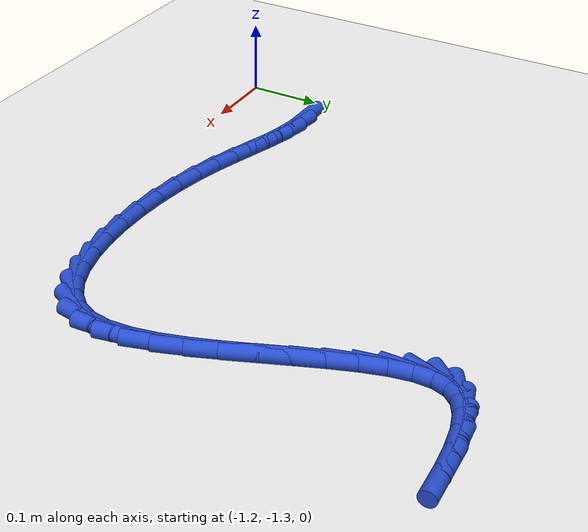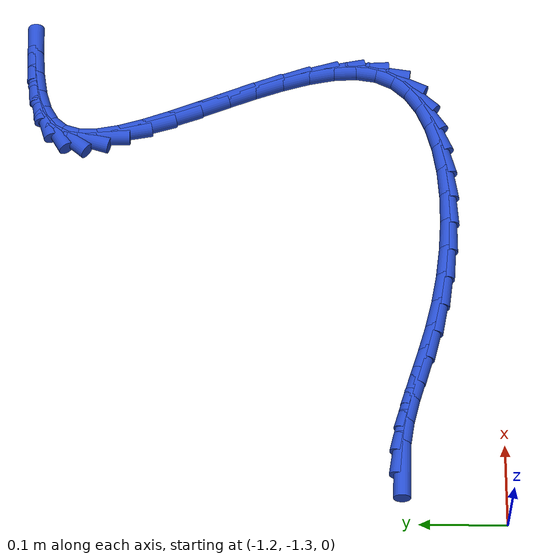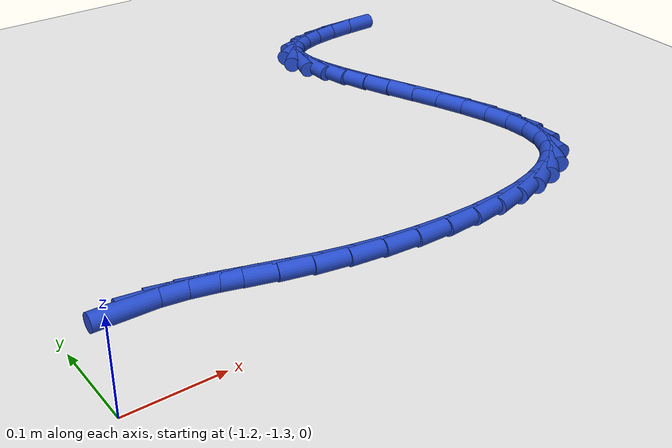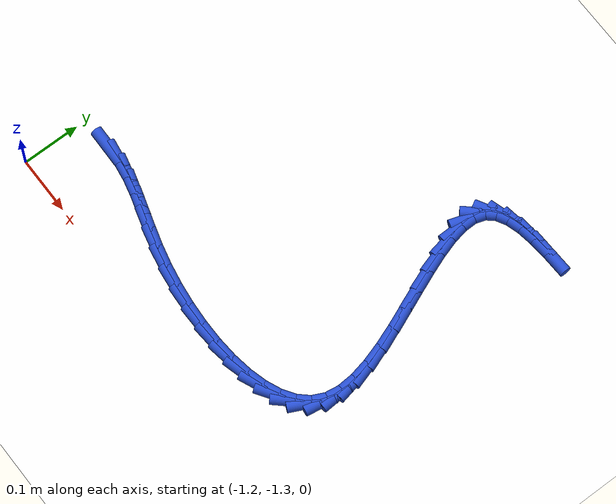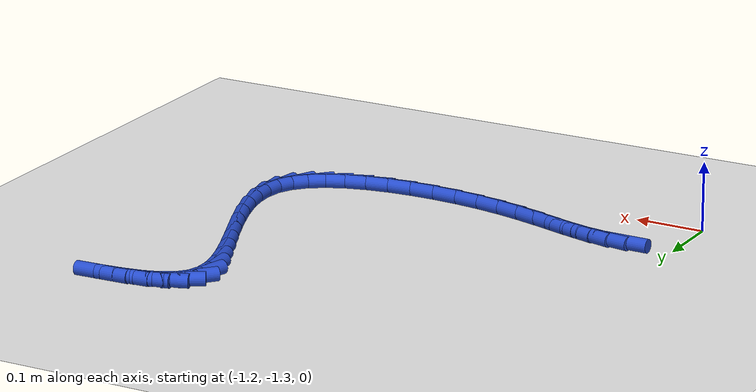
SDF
<sdf version="1.6">
 <world name="default">
  <model name="ground_plane">
   <static>1</static>
   <link name="link">
    <collision name="collision">
     <geometry><plane><normal>0 0 1</normal><size>100 100</size></plane></geometry>
     <surface><friction><ode><mu>100</mu><mu2>50</mu2></ode></friction></surface>
    </collision>
    <visual name="visual">
     <cast_shadows>0</cast_shadows>
     <geometry><plane><normal>0 0 1</normal><size>100 100</size></plane></geometry>
     <material>
      <script><uri>file://media/materials/scripts/gazebo.material</uri><name>Gazebo/WhiteGlow</name></script>
     </material>
    </visual>
   </link>
  </model>
  <model name="line">
   <link name="link_220">
    <pose>-1.132190685036178 -1.1822906270000768 0.01 0 1.57 -0.018537562318021623</pose>
    <collision name="collision">
     <geometry><cylinder><radius>0.01</radius><length>0.08</length></cylinder></geometry>
    </collision>
    <visual name="visual">
     <material>
      <script><name>Gazebo/Blue</name><uri>file://media/materials/scripts/gazebo.material</uri></script>
     </material>
     <geometry><cylinder><radius>0.01</radius><length>0.08</length></cylinder></geometry>
    </visual>
   </link>
   <link name="link_221">
    <pose>-1.1045751668721282 -1.1828026100364888 0.01 0 1.57 -0.14752570635238532</pose>
    <collision name="collision">
     <geometry><cylinder><radius>0.01</radius><length>0.08</length></cylinder></geometry>
    </collision>
    <visual name="visual">
     <material>
      <script><name>Gazebo/Blue</name><uri>file://media/materials/scripts/gazebo.material</uri></script>
     </material>
     <geometry><cylinder><radius>0.01</radius><length>0.08</length></cylinder></geometry>
    </visual>
   </link>
   <link name="link_222">
    <pose>-1.0767879447396382 -1.1869319398471527 0.01 0 1.57 -0.2357447293037168</pose>
    <collision name="collision">
     <geometry><cylinder><radius>0.01</radius><length>0.08</length></cylinder></geometry>
    </collision>
    <visual name="visual">
     <material>
      <script><name>Gazebo/Blue</name><uri>file://media/materials/scripts/gazebo.material</uri></script>
     </material>
     <geometry><cylinder><radius>0.01</radius><length>0.08</length></cylinder></geometry>
    </visual>
   </link>
   <link name="link_223">
    <pose>-1.0484693596692336 -1.1937343829681752 0.01 0 1.57 -0.28416808545041117</pose>
    <collision name="collision">
     <geometry><cylinder><radius>0.01</radius><length>0.08</length></cylinder></geometry>
    </collision>
    <visual name="visual">
     <material>
      <script><name>Gazebo/Blue</name><uri>file://media/materials/scripts/gazebo.material</uri></script>
     </material>
     <geometry><cylinder><radius>0.01</radius><length>0.08</length></cylinder></geometry>
    </visual>
   </link>
   <link name="link_224">
    <pose>-1.0192597526914402 -1.2022657059356647 0.01 0 1.57 -0.2968057909113308</pose>
    <collision name="collision">
     <geometry><cylinder><radius>0.01</radius><length>0.08</length></cylinder></geometry>
    </collision>
    <visual name="visual">
     <material>
      <script><name>Gazebo/Blue</name><uri>file://media/materials/scripts/gazebo.material</uri></script>
     </material>
     <geometry><cylinder><radius>0.01</radius><length>0.08</length></cylinder></geometry>
    </visual>
   </link>
   <link name="link_225">
    <pose>-0.9887994648367817 -1.211581675285726 0.01 0 1.57 -0.2781078214969602</pose>
    <collision name="collision">
     <geometry><cylinder><radius>0.01</radius><length>0.08</length></cylinder></geometry>
    </collision>
    <visual name="visual">
     <material>
      <script><name>Gazebo/Blue</name><uri>file://media/materials/scripts/gazebo.material</uri></script>
     </material>
     <geometry><cylinder><radius>0.01</radius><length>0.08</length></cylinder></geometry>
    </visual>
   </link>
   <link name="link_226">
    <pose>-0.9567288371357837 -1.220738057554467 0.01 0 1.57 -0.23247385164590176</pose>
    <collision name="collision">
     <geometry><cylinder><radius>0.01</radius><length>0.08</length></cylinder></geometry>
    </collision>
    <visual name="visual">
     <material>
      <script><name>Gazebo/Blue</name><uri>file://media/materials/scripts/gazebo.material</uri></script>
     </material>
     <geometry><cylinder><radius>0.01</radius><length>0.08</length></cylinder></geometry>
    </visual>
   </link>
   <link name="link_227">
    <pose>-0.9226958090046593 -1.2287955252108913 0.01 0 1.57 -0.17375183146665057</pose>
    <collision name="collision">
     <geometry><cylinder><radius>0.01</radius><length>0.08</length></cylinder></geometry>
    </collision>
    <visual name="visual">
     <material>
      <script><name>Gazebo/Blue</name><uri>file://media/materials/scripts/gazebo.material</uri></script>
     </material>
     <geometry><cylinder><radius>0.01</radius><length>0.08</length></cylinder></geometry>
    </visual>
   </link>
   <link name="link_228">
    <pose>-0.8867873827148636 -1.2350982336891536 0.01 0 1.57 -0.11629318099145897</pose>
    <collision name="collision">
     <geometry><cylinder><radius>0.01</radius><length>0.08</length></cylinder></geometry>
    </collision>
    <visual name="visual">
     <material>
      <script><name>Gazebo/Blue</name><uri>file://media/materials/scripts/gazebo.material</uri></script>
     </material>
     <geometry><cylinder><radius>0.01</radius><length>0.08</length></cylinder></geometry>
    </visual>
   </link>
   <link name="link_229">
    <pose>-0.8497615974664021 -1.2394235965229299 0.01 0 1.57 -0.057853390656605254</pose>
    <collision name="collision">
     <geometry><cylinder><radius>0.01</radius><length>0.08</length></cylinder></geometry>
    </collision>
    <visual name="visual">
     <material>
      <script><name>Gazebo/Blue</name><uri>file://media/materials/scripts/gazebo.material</uri></script>
     </material>
     <geometry><cylinder><radius>0.01</radius><length>0.08</length></cylinder></geometry>
    </visual>
   </link>
   <link name="link_230">
    <pose>-0.8124331186408114 -1.241585588202155 0.01 0 1.57 0.00509019953248283</pose>
    <collision name="collision">
     <geometry><cylinder><radius>0.01</radius><length>0.08</length></cylinder></geometry>
    </collision>
    <visual name="visual">
     <material>
      <script><name>Gazebo/Blue</name><uri>file://media/materials/scripts/gazebo.material</uri></script>
     </material>
     <geometry><cylinder><radius>0.01</radius><length>0.08</length></cylinder></geometry>
    </visual>
   </link>
   <link name="link_231">
    <pose>-0.7756166116196271 -1.2413981832167627 0.01 0 1.57 0.07657124802108592</pose>
    <collision name="collision">
     <geometry><cylinder><radius>0.01</radius><length>0.08</length></cylinder></geometry>
    </collision>
    <visual name="visual">
     <material>
      <script><name>Gazebo/Blue</name><uri>file://media/materials/scripts/gazebo.material</uri></script>
     </material>
     <geometry><cylinder><radius>0.01</radius><length>0.08</length></cylinder></geometry>
    </visual>
   </link>
   <link name="link_232">
    <pose>-0.7401267417843863 -1.2386753560566879 0.01 0 1.57 0.16182606359454382</pose>
    <collision name="collision">
     <geometry><cylinder><radius>0.01</radius><length>0.08</length></cylinder></geometry>
    </collision>
    <visual name="visual">
     <material>
      <script><name>Gazebo/Blue</name><uri>file://media/materials/scripts/gazebo.material</uri></script>
     </material>
     <geometry><cylinder><radius>0.01</radius><length>0.08</length></cylinder></geometry>
    </visual>
   </link>
   <link name="link_233">
    <pose>-0.7067781745166261 -1.233231081211866 0.01 0 1.57 0.2681760334706718</pose>
    <collision name="collision">
     <geometry><cylinder><radius>0.01</radius><length>0.08</length></cylinder></geometry>
    </collision>
    <visual name="visual">
     <material>
      <script><name>Gazebo/Blue</name><uri>file://media/materials/scripts/gazebo.material</uri></script>
     </material>
     <geometry><cylinder><radius>0.01</radius><length>0.08</length></cylinder></geometry>
    </visual>
   </link>
   <link name="link_234">
    <pose>-0.6763855751978802 -1.2248793331722305 0.01 0 1.57 0.4060283566092858</pose>
    <collision name="collision">
     <geometry><cylinder><radius>0.01</radius><length>0.08</length></cylinder></geometry>
    </collision>
    <visual name="visual">
     <material>
      <script><name>Gazebo/Blue</name><uri>file://media/materials/scripts/gazebo.material</uri></script>
     </material>
     <geometry><cylinder><radius>0.01</radius><length>0.08</length></cylinder></geometry>
    </visual>
   </link>
   <link name="link_235">
    <pose>-0.6497636092096865 -1.2134340864277169 0.01 0 1.57 0.5890593089756132</pose>
    <collision name="collision">
     <geometry><cylinder><radius>0.01</radius><length>0.08</length></cylinder></geometry>
    </collision>
    <visual name="visual">
     <material>
      <script><name>Gazebo/Blue</name><uri>file://media/materials/scripts/gazebo.material</uri></script>
     </material>
     <geometry><cylinder><radius>0.01</radius><length>0.08</length></cylinder></geometry>
    </visual>
   </link>
   <link name="link_236">
    <pose>-0.6277269419335809 -1.1987093154682584 0.01 0 1.57 0.8299781471679321</pose>
    <collision name="collision">
     <geometry><cylinder><radius>0.01</radius><length>0.08</length></cylinder></geometry>
    </collision>
    <visual name="visual">
     <material>
      <script><name>Gazebo/Blue</name><uri>file://media/materials/scripts/gazebo.material</uri></script>
     </material>
     <geometry><cylinder><radius>0.01</radius><length>0.08</length></cylinder></geometry>
    </visual>
   </link>
   <link name="link_237">
    <pose>-0.6110902387511004 -1.1805189947837913 0.01 0 1.57 1.125538444012514</pose>
    <collision name="collision">
     <geometry><cylinder><radius>0.01</radius><length>0.08</length></cylinder></geometry>
    </collision>
    <visual name="visual">
     <material>
      <script><name>Gazebo/Blue</name><uri>file://media/materials/scripts/gazebo.material</uri></script>
     </material>
     <geometry><cylinder><radius>0.01</radius><length>0.08</length></cylinder></geometry>
    </visual>
   </link>
   <link name="link_238">
    <pose>-0.6006670865269563 -1.1586775841167776 0.01 0 1.57 1.4200193907584626</pose>
    <collision name="collision">
     <geometry><cylinder><radius>0.01</radius><length>0.08</length></cylinder></geometry>
    </collision>
    <visual name="visual">
     <material>
      <script><name>Gazebo/Blue</name><uri>file://media/materials/scripts/gazebo.material</uri></script>
     </material>
     <geometry><cylinder><radius>0.01</radius><length>0.08</length></cylinder></geometry>
    </visual>
   </link>
   <link name="link_239">
    <pose>-0.5967981495905675 -1.1332123232525668 0.01 0 1.57 -1.5072758649054085</pose>
    <collision name="collision">
     <geometry><cylinder><radius>0.01</radius><length>0.08</length></cylinder></geometry>
    </collision>
    <visual name="visual">
     <material>
      <script><name>Gazebo/Blue</name><uri>file://media/materials/scripts/gazebo.material</uri></script>
     </material>
     <geometry><cylinder><radius>0.01</radius><length>0.08</length></cylinder></geometry>
    </visual>
   </link>
   <link name="link_240">
    <pose>-0.5986119714331533 -1.10469581639602 0.01 0 1.57 -1.365578242102585</pose>
    <collision name="collision">
     <geometry><cylinder><radius>0.01</radius><length>0.08</length></cylinder></geometry>
    </collision>
    <visual name="visual">
     <material>
      <script><name>Gazebo/Blue</name><uri>file://media/materials/scripts/gazebo.material</uri></script>
     </material>
     <geometry><cylinder><radius>0.01</radius><length>0.08</length></cylinder></geometry>
    </visual>
   </link>
   <link name="link_241">
    <pose>-0.605045629093181 -1.0737868134460333 0.01 0 1.57 -1.2737911544939187</pose>
    <collision name="collision">
     <geometry><cylinder><radius>0.01</radius><length>0.08</length></cylinder></geometry>
    </collision>
    <visual name="visual">
     <material>
      <script><name>Gazebo/Blue</name><uri>file://media/materials/scripts/gazebo.material</uri></script>
     </material>
     <geometry><cylinder><radius>0.01</radius><length>0.08</length></cylinder></geometry>
    </visual>
   </link>
   <link name="link_242">
    <pose>-0.6150361996091187 -1.0411440643015022 0.01 0 1.57 -1.2161817886456923</pose>
    <collision name="collision">
     <geometry><cylinder><radius>0.01</radius><length>0.08</length></cylinder></geometry>
    </collision>
    <visual name="visual">
     <material>
      <script><name>Gazebo/Blue</name><uri>file://media/materials/scripts/gazebo.material</uri></script>
     </material>
     <geometry><cylinder><radius>0.01</radius><length>0.08</length></cylinder></geometry>
    </visual>
   </link>
   <link name="link_243">
    <pose>-0.6275207600194341 -1.007426318861324 0.01 0 1.57 -1.1836898186699236</pose>
    <collision name="collision">
     <geometry><cylinder><radius>0.01</radius><length>0.08</length></cylinder></geometry>
    </collision>
    <visual name="visual">
     <material>
      <script><name>Gazebo/Blue</name><uri>file://media/materials/scripts/gazebo.material</uri></script>
     </material>
     <geometry><cylinder><radius>0.01</radius><length>0.08</length></cylinder></geometry>
    </visual>
   </link>
   <link name="link_244">
    <pose>-0.6414363873625948 -0.9732923270243937 0.01 0 1.57 -1.171931299498141</pose>
    <collision name="collision">
     <geometry><cylinder><radius>0.01</radius><length>0.08</length></cylinder></geometry>
    </collision>
    <visual name="visual">
     <material>
      <script><name>Gazebo/Blue</name><uri>file://media/materials/scripts/gazebo.material</uri></script>
     </material>
     <geometry><cylinder><radius>0.01</radius><length>0.08</length></cylinder></geometry>
    </visual>
   </link>
   <link name="link_245">
    <pose>-0.6557201586770683 -0.939400838689608 0.01 0 1.57 -1.1800654564087227</pose>
    <collision name="collision">
     <geometry><cylinder><radius>0.01</radius><length>0.08</length></cylinder></geometry>
    </collision>
    <visual name="visual">
     <material>
      <script><name>Gazebo/Blue</name><uri>file://media/materials/scripts/gazebo.material</uri></script>
     </material>
     <geometry><cylinder><radius>0.01</radius><length>0.08</length></cylinder></geometry>
    </visual>
   </link>
   <link name="link_246">
    <pose>-0.6693091510013225 -0.9064106037558627 0.01 0 1.57 -1.2107723169783227</pose>
    <collision name="collision">
     <geometry><cylinder><radius>0.01</radius><length>0.08</length></cylinder></geometry>
    </collision>
    <visual name="visual">
     <material>
      <script><name>Gazebo/Blue</name><uri>file://media/materials/scripts/gazebo.material</uri></script>
     </material>
     <geometry><cylinder><radius>0.01</radius><length>0.08</length></cylinder></geometry>
    </visual>
   </link>
   <link name="link_247">
    <pose>-0.681140441373825 -0.8749803721220539 0.01 0 1.57 -1.2715933478364647</pose>
    <collision name="collision">
     <geometry><cylinder><radius>0.01</radius><length>0.08</length></cylinder></geometry>
    </collision>
    <visual name="visual">
     <material>
      <script><name>Gazebo/Blue</name><uri>file://media/materials/scripts/gazebo.material</uri></script>
     </material>
     <geometry><cylinder><radius>0.01</radius><length>0.08</length></cylinder></geometry>
    </visual>
   </link>
   <link name="link_248">
    <pose>-0.6901511068330431 -0.8457688936870791 0.01 0 1.57 -1.3785060059269256</pose>
    <collision name="collision">
     <geometry><cylinder><radius>0.01</radius><length>0.08</length></cylinder></geometry>
    </collision>
    <visual name="visual">
     <material>
      <script><name>Gazebo/Blue</name><uri>file://media/materials/scripts/gazebo.material</uri></script>
     </material>
     <geometry><cylinder><radius>0.01</radius><length>0.08</length></cylinder></geometry>
    </visual>
   </link>
   <link name="link_249">
    <pose>-0.6952782244174457 -0.819434918349832 0.01 0 1.57 -1.5628725980699558</pose>
    <collision name="collision">
     <geometry><cylinder><radius>0.01</radius><length>0.08</length></cylinder></geometry>
    </collision>
    <visual name="visual">
     <material>
      <script><name>Gazebo/Blue</name><uri>file://media/materials/scripts/gazebo.material</uri></script>
     </material>
     <geometry><cylinder><radius>0.01</radius><length>0.08</length></cylinder></geometry>
    </visual>
   </link>
   <link name="link_250">
    <pose>-0.6954588711654992 -0.7966371960092095 0.01 0 1.57 1.2674874845973678</pose>
    <collision name="collision">
     <geometry><cylinder><radius>0.01</radius><length>0.08</length></cylinder></geometry>
    </collision>
    <visual name="visual">
     <material>
      <script><name>Gazebo/Blue</name><uri>file://media/materials/scripts/gazebo.material</uri></script>
     </material>
     <geometry><cylinder><radius>0.01</radius><length>0.08</length></cylinder></geometry>
    </visual>
   </link>
   <link name="link_251">
    <pose>-0.6896356374542214 -0.7780305609572385 0.01 0 1.57 0.8566524418903935</pose>
    <collision name="collision">
     <geometry><cylinder><radius>0.01</radius><length>0.08</length></cylinder></geometry>
    </collision>
    <visual name="visual">
     <material>
      <script><name>Gazebo/Blue</name><uri>file://media/materials/scripts/gazebo.material</uri></script>
     </material>
     <geometry><cylinder><radius>0.01</radius><length>0.08</length></cylinder></geometry>
    </visual>
   </link>
   <link name="link_252">
    <pose>-0.677343651052846 -0.7638490237939677 0.01 0 1.57 0.5175824628928455</pose>
    <collision name="collision">
     <geometry><cylinder><radius>0.01</radius><length>0.08</length></cylinder></geometry>
    </collision>
    <visual name="visual">
     <material>
      <script><name>Gazebo/Blue</name><uri>file://media/materials/scripts/gazebo.material</uri></script>
     </material>
     <geometry><cylinder><radius>0.01</radius><length>0.08</length></cylinder></geometry>
    </visual>
   </link>
   <link name="link_253">
    <pose>-0.6592307578139756 -0.7535363359085931 0.01 0 1.57 0.2969230010853159</pose>
    <collision name="collision">
     <geometry><cylinder><radius>0.01</radius><length>0.08</length></cylinder></geometry>
    </collision>
    <visual name="visual">
     <material>
      <script><name>Gazebo/Blue</name><uri>file://media/materials/scripts/gazebo.material</uri></script>
     </material>
     <geometry><cylinder><radius>0.01</radius><length>0.08</length></cylinder></geometry>
    </visual>
   </link>
   <link name="link_254">
    <pose>-0.6360674891440643 -0.7464491166571232 0.01 0 1.57 0.16271125114194102</pose>
    <collision name="collision">
     <geometry><cylinder><radius>0.01</radius><length>0.08</length></cylinder></geometry>
    </collision>
    <visual name="visual">
     <material>
      <script><name>Gazebo/Blue</name><uri>file://media/materials/scripts/gazebo.material</uri></script>
     </material>
     <geometry><cylinder><radius>0.01</radius><length>0.08</length></cylinder></geometry>
    </visual>
   </link>
   <link name="link_255">
    <pose>-0.6086243764495648 -0.7419439853955669 0.01 0 1.57 0.08272588383052602</pose>
    <collision name="collision">
     <geometry><cylinder><radius>0.01</radius><length>0.08</length></cylinder></geometry>
    </collision>
    <visual name="visual">
     <material>
      <script><name>Gazebo/Blue</name><uri>file://media/materials/scripts/gazebo.material</uri></script>
     </material>
     <geometry><cylinder><radius>0.01</radius><length>0.08</length></cylinder></geometry>
    </visual>
   </link>
   <link name="link_256">
    <pose>-0.5776719511369306 -0.7393775614799323 0.01 0 1.57 0.03770997745703709</pose>
    <collision name="collision">
     <geometry><cylinder><radius>0.01</radius><length>0.08</length></cylinder></geometry>
    </collision>
    <visual name="visual">
     <material>
      <script><name>Gazebo/Blue</name><uri>file://media/materials/scripts/gazebo.material</uri></script>
     </material>
     <geometry><cylinder><radius>0.01</radius><length>0.08</length></cylinder></geometry>
    </visual>
   </link>
  </model>
 </world>
</sdf>
